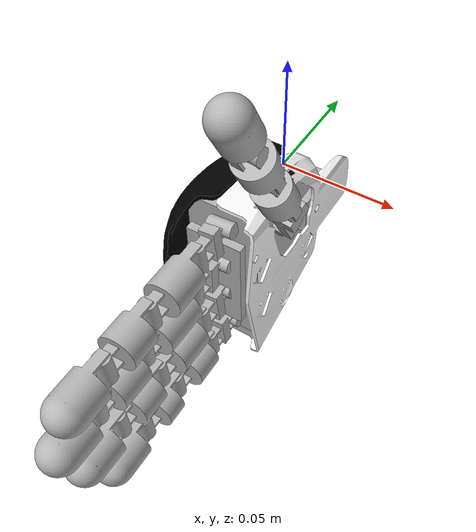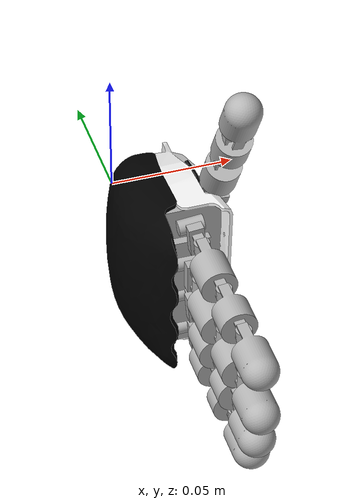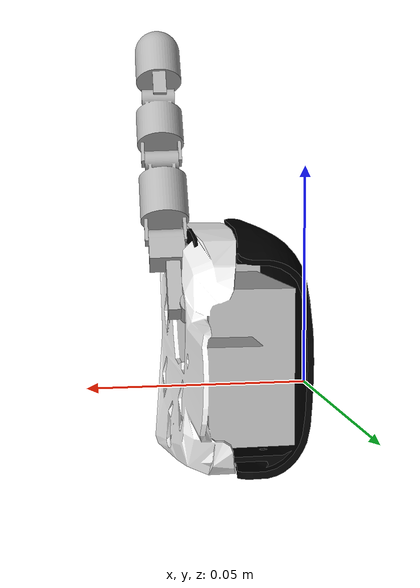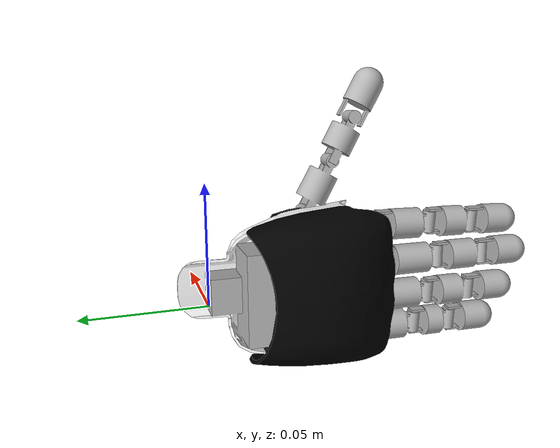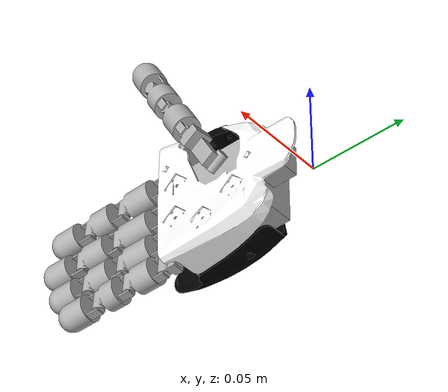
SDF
<sdf version='1.6'>
  <model name='ICub'>
    <link name='base_link'>
      <pose frame=''>0 0 0 0 -0 0</pose>
      <inertial>
        <pose frame=''>0.011682 -0.051682 0.000577 0 -0 0</pose>
        <mass>1.221</mass>
        <inertia>
          <ixx>1.23289</ixx>
          <ixy>0.000161951</ixy>
          <ixz>4.09312e-06</ixz>
          <iyy>1.2322</iyy>
          <iyz>1.57346e-05</iyz>
          <izz>1.23277</izz>
        </inertia>
      </inertial>
      <visual name='base_link_fixed_joint_lump__right_palm_visual'>
        <pose frame=''>0.016 -0.0625 -0 -1.5708 7e-06 -1.57079</pose>
        <geometry>
          <mesh>
            <scale>1 1 1</scale>
            <uri>model://icub_with_hands/meshes/right_palm.dae</uri>
          </mesh>
        </geometry>
      </visual>
      <visual name='base_link_fixed_joint_lump__indexbase_visual_1'>
        <pose frame=''>0.01225 -0.0643 0.027 -1.4749 0.017507 -1.57079</pose>
        <geometry>
          <mesh>
            <scale>1 1 1</scale>
            <uri>model://icub_with_hands/meshes/indexbase.dae</uri>
          </mesh>
        </geometry>
      </visual>
      <visual name='base_link_fixed_joint_lump__il0_visual_2'>
        <pose frame=''>0.01225 -0.079098 0.026741 0.0959 0.017507 -1.57079</pose>
        <geometry>
          <mesh>
            <scale>1 1 1</scale>
            <uri>model://icub_with_hands/meshes/il0.dae</uri>
          </mesh>
        </geometry>
      </visual>
      <visual name='base_link_fixed_joint_lump__littlebase_visual_3'>
        <pose frame=''>0.0135 -0.06225 -0.02475 -1.4835 0.017507 -1.57079</pose>
        <geometry>
          <mesh>
            <scale>1 1 1</scale>
            <uri>model://icub_with_hands/meshes/littlebase.dae</uri>
          </mesh>
        </geometry>
      </visual>
      <visual name='base_link_fixed_joint_lump__lil0_visual_4'>
        <pose frame=''>0.0135 -0.077048 -0.025009 0.0873 0.017507 -1.57079</pose>
        <geometry>
          <mesh>
            <scale>1 1 1</scale>
            <uri>model://icub_with_hands/meshes/lil0.dae</uri>
          </mesh>
        </geometry>
      </visual>
      <visual name='base_link_fixed_joint_lump__middlebase_visual_5'>
        <pose frame=''>0.011 -0.0653 0.01 -1.5708 7e-06 -1.57079</pose>
        <geometry>
          <mesh>
            <scale>1 1 1</scale>
            <uri>model://icub_with_hands/meshes/middlebase.dae</uri>
          </mesh>
        </geometry>
      </visual>
      <visual name='base_link_fixed_joint_lump__ml0_visual_6'>
        <pose frame=''>0.011 -0.0803 0.01 -0 7e-06 -1.57079</pose>
        <geometry>
          <mesh>
            <scale>1 1 1</scale>
            <uri>model://icub_with_hands/meshes/ml0.dae</uri>
          </mesh>
        </geometry>
      </visual>
      <visual name='base_link_fixed_joint_lump__ringbase_visual_7'>
        <pose frame=''>0.01175 -0.06415 -0.0059 -1.4835 0.008707 -1.57079</pose>
        <geometry>
          <mesh>
            <scale>1 1 1</scale>
            <uri>model://icub_with_hands/meshes/ringbase.dae</uri>
          </mesh>
        </geometry>
      </visual>
      <visual name='base_link_fixed_joint_lump__ril0_visual_8'>
        <pose frame=''>0.01175 -0.078949 -0.006029 0.0873 0.008707 -1.57079</pose>
        <geometry>
          <mesh>
            <scale>1 1 1</scale>
            <uri>model://icub_with_hands/meshes/ril0.dae</uri>
          </mesh>
        </geometry>
      </visual>
    </link>
    <link name='il1'>
      <pose frame=''>0.01225 -0.079098 0.026741 0.0959 0.017507 -1.57079</pose>
      <inertial>
        <pose frame=''>0 0 0 0 -0 0</pose>
        <mass>0.111</mass>
        <inertia>
          <ixx>0.112</ixx>
          <ixy>0</ixy>
          <ixz>0</ixz>
          <iyy>0.112</iyy>
          <iyz>0</iyz>
          <izz>0.112</izz>
        </inertia>
      </inertial>
      <visual name='il1_visual'>
        <pose frame=''>0.0259 0 0 0 -0 0</pose>
        <geometry>
          <mesh>
            <scale>1 1 1</scale>
            <uri>model://icub_with_hands/meshes/il1.dae</uri>
          </mesh>
        </geometry>
      </visual>
    </link>
    <joint name='ij3' type='revolute'>
      <child>il1</child>
      <parent>base_link</parent>
      <axis>
        <xyz>-0.095753 -0.017426 0.995253</xyz>
        <limit>
          <lower>0</lower>
          <upper>1.5708</upper>
          <effort>1000</effort>
          <velocity>0.5</velocity>
        </limit>
        <dynamics>
          <spring_reference>0</spring_reference>
          <spring_stiffness>0</spring_stiffness>
        </dynamics>
        <use_parent_model_frame>1</use_parent_model_frame>
      </axis>
    </joint>
    <link name='il2'>
      <pose frame=''>0.012251 -0.104994 0.026287 0.0959 0.017507 -1.57079</pose>
      <inertial>
        <pose frame=''>0 0 0 0 -0 0</pose>
        <mass>0.111</mass>
        <inertia>
          <ixx>0.112</ixx>
          <ixy>0</ixy>
          <ixz>0</ixz>
          <iyy>0.112</iyy>
          <iyz>0</iyz>
          <izz>0.112</izz>
        </inertia>
      </inertial>
      <visual name='il2_visual'>
        <pose frame=''>0.022 0 0 0 -0 0</pose>
        <geometry>
          <mesh>
            <scale>1 1 1</scale>
            <uri>model://icub_with_hands/meshes/il2.dae</uri>
          </mesh>
        </geometry>
      </visual>
    </link>
    <joint name='ij4' type='revolute'>
      <child>il2</child>
      <parent>il1</parent>
      <axis>
        <xyz>-0.095753 -0.017426 0.995253</xyz>
        <limit>
          <lower>0</lower>
          <upper>1.5708</upper>
          <effort>1000</effort>
          <velocity>0.5</velocity>
        </limit>
        <dynamics>
          <spring_reference>0</spring_reference>
          <spring_stiffness>0</spring_stiffness>
        </dynamics>
        <use_parent_model_frame>1</use_parent_model_frame>
      </axis>
    </joint>
    <link name='il3'>
      <pose frame=''>0.012251 -0.126991 0.025902 0.0959 0.017507 -1.57079</pose>
      <inertial>
        <pose frame=''>0 0 0 0 -0 0</pose>
        <mass>0.111</mass>
        <inertia>
          <ixx>0.112</ixx>
          <ixy>0</ixy>
          <ixz>0</ixz>
          <iyy>0.112</iyy>
          <iyz>0</iyz>
          <izz>0.112</izz>
        </inertia>
      </inertial>
      <visual name='il3_visual'>
        <pose frame=''>0.0168 0 0 -1.5708 0 0</pose>
        <geometry>
          <mesh>
            <scale>1 1 1</scale>
            <uri>model://icub_with_hands/meshes/il3.dae</uri>
          </mesh>
        </geometry>
      </visual>
    </link>
    <joint name='ij5' type='revolute'>
      <child>il3</child>
      <parent>il2</parent>
      <axis>
        <xyz>-0.095753 -0.017426 0.995253</xyz>
        <limit>
          <lower>0</lower>
          <upper>1.5708</upper>
          <effort>1000</effort>
          <velocity>0.5</velocity>
        </limit>
        <dynamics>
          <spring_reference>0</spring_reference>
          <spring_stiffness>0</spring_stiffness>
        </dynamics>
        <use_parent_model_frame>1</use_parent_model_frame>
      </axis>
    </joint>
    <link name='lil1'>
      <pose frame=''>0.0135 -0.077048 -0.025009 0.0873 0.017507 -1.57079</pose>
      <inertial>
        <pose frame=''>0 0 0 0 -0 0</pose>
        <mass>0.111</mass>
        <inertia>
          <ixx>0.112</ixx>
          <ixy>0</ixy>
          <ixz>0</ixz>
          <iyy>0.112</iyy>
          <iyz>0</iyz>
          <izz>0.112</izz>
        </inertia>
      </inertial>
      <visual name='lil1_visual'>
        <pose frame=''>0.0218 0 0 0 -0 0</pose>
        <geometry>
          <mesh>
            <scale>1 1 1</scale>
            <uri>model://icub_with_hands/meshes/lil1.dae</uri>
          </mesh>
        </geometry>
      </visual>
    </link>
    <joint name='lij3' type='revolute'>
      <child>lil1</child>
      <parent>base_link</parent>
      <axis>
        <xyz>-0.087189 -0.01744 0.996039</xyz>
        <limit>
          <lower>0</lower>
          <upper>1.5708</upper>
          <effort>1000</effort>
          <velocity>0.5</velocity>
        </limit>
        <dynamics>
          <spring_reference>0</spring_reference>
          <spring_stiffness>0</spring_stiffness>
        </dynamics>
        <use_parent_model_frame>1</use_parent_model_frame>
      </axis>
    </joint>
    <link name='lil2'>
      <pose frame=''>0.0135 -0.098844 -0.025391 0.0873 0.017507 -1.57079</pose>
      <inertial>
        <pose frame=''>0 0 0 0 -0 0</pose>
        <mass>0.111</mass>
        <inertia>
          <ixx>0.112</ixx>
          <ixy>0</ixy>
          <ixz>0</ixz>
          <iyy>0.112</iyy>
          <iyz>0</iyz>
          <izz>0.112</izz>
        </inertia>
      </inertial>
      <visual name='lil2_visual'>
        <pose frame=''>0.019 0 0 0 -0 0</pose>
        <geometry>
          <mesh>
            <scale>1 1 1</scale>
            <uri>model://icub_with_hands/meshes/lil2.dae</uri>
          </mesh>
        </geometry>
      </visual>
    </link>
    <joint name='lij4' type='revolute'>
      <child>lil2</child>
      <parent>lil1</parent>
      <axis>
        <xyz>-0.087189 -0.01744 0.996039</xyz>
        <limit>
          <lower>0</lower>
          <upper>1.5708</upper>
          <effort>1000</effort>
          <velocity>0.5</velocity>
        </limit>
        <dynamics>
          <spring_reference>0</spring_reference>
          <spring_stiffness>0</spring_stiffness>
        </dynamics>
        <use_parent_model_frame>1</use_parent_model_frame>
      </axis>
    </joint>
    <link name='lil3'>
      <pose frame=''>0.0135 -0.117841 -0.025723 0.0873 0.017507 -1.57079</pose>
      <inertial>
        <pose frame=''>0 0 0 0 -0 0</pose>
        <mass>0.111</mass>
        <inertia>
          <ixx>0.112</ixx>
          <ixy>0</ixy>
          <ixz>0</ixz>
          <iyy>0.112</iyy>
          <iyz>0</iyz>
          <izz>0.112</izz>
        </inertia>
      </inertial>
      <visual name='lil3_visual'>
        <pose frame=''>0.0168 0 0 -1.5708 0 0</pose>
        <geometry>
          <mesh>
            <scale>1 1 1</scale>
            <uri>model://icub_with_hands/meshes/lil3.dae</uri>
          </mesh>
        </geometry>
      </visual>
    </link>
    <joint name='lij5' type='revolute'>
      <child>lil3</child>
      <parent>lil2</parent>
      <axis>
        <xyz>-0.087189 -0.01744 0.996039</xyz>
        <limit>
          <lower>0</lower>
          <upper>1.5708</upper>
          <effort>1000</effort>
          <velocity>0.5</velocity>
        </limit>
        <dynamics>
          <spring_reference>0</spring_reference>
          <spring_stiffness>0</spring_stiffness>
        </dynamics>
        <use_parent_model_frame>1</use_parent_model_frame>
      </axis>
    </joint>
    <link name='ml1'>
      <pose frame=''>0.011 -0.0803 0.01 -0 7e-06 -1.57079</pose>
      <inertial>
        <pose frame=''>0 0 0 0 -0 0</pose>
        <mass>0.111</mass>
        <inertia>
          <ixx>0.112</ixx>
          <ixy>0</ixy>
          <ixz>0</ixz>
          <iyy>0.112</iyy>
          <iyz>0</iyz>
          <izz>0.112</izz>
        </inertia>
      </inertial>
      <visual name='ml1_visual'>
        <pose frame=''>0.0285 0 0 0 -0 0</pose>
        <geometry>
          <mesh>
            <scale>1 1 1</scale>
            <uri>model://icub_with_hands/meshes/ml1.dae</uri>
          </mesh>
        </geometry>
      </visual>
    </link>
    <joint name='mj3' type='revolute'>
      <child>ml1</child>
      <parent>base_link</parent>
      <axis>
        <xyz>0 -7e-06 1</xyz>
        <limit>
          <lower>0</lower>
          <upper>1.5708</upper>
          <effort>1000</effort>
          <velocity>0.5</velocity>
        </limit>
        <dynamics>
          <spring_reference>0</spring_reference>
          <spring_stiffness>0</spring_stiffness>
        </dynamics>
        <use_parent_model_frame>1</use_parent_model_frame>
      </axis>
    </joint>
    <link name='ml2'>
      <pose frame=''>0.011 -0.1088 0.01 -0 7e-06 -1.57079</pose>
      <inertial>
        <pose frame=''>0 0 0 0 -0 0</pose>
        <mass>0.111</mass>
        <inertia>
          <ixx>0.112</ixx>
          <ixy>0</ixy>
          <ixz>0</ixz>
          <iyy>0.112</iyy>
          <iyz>0</iyz>
          <izz>0.112</izz>
        </inertia>
      </inertial>
      <visual name='ml2_visual'>
        <pose frame=''>0.024 0 0 0 -0 0</pose>
        <geometry>
          <mesh>
            <scale>1 1 1</scale>
            <uri>model://icub_with_hands/meshes/ml2.dae</uri>
          </mesh>
        </geometry>
      </visual>
    </link>
    <joint name='mj4' type='revolute'>
      <child>ml2</child>
      <parent>ml1</parent>
      <axis>
        <xyz>0 -7e-06 1</xyz>
        <limit>
          <lower>0</lower>
          <upper>1.5708</upper>
          <effort>1000</effort>
          <velocity>0.5</velocity>
        </limit>
        <dynamics>
          <spring_reference>0</spring_reference>
          <spring_stiffness>0</spring_stiffness>
        </dynamics>
        <use_parent_model_frame>1</use_parent_model_frame>
      </axis>
    </joint>
    <link name='ml3'>
      <pose frame=''>0.011001 -0.1328 0.009999 -0 7e-06 -1.57079</pose>
      <inertial>
        <pose frame=''>0 0 0 0 -0 0</pose>
        <mass>0.111</mass>
        <inertia>
          <ixx>0.112</ixx>
          <ixy>0</ixy>
          <ixz>0</ixz>
          <iyy>0.112</iyy>
          <iyz>0</iyz>
          <izz>0.112</izz>
        </inertia>
      </inertial>
      <visual name='ml3_visual'>
        <pose frame=''>0.0168 0 0 -1.5708 0 0</pose>
        <geometry>
          <mesh>
            <scale>1 1 1</scale>
            <uri>model://icub_with_hands/meshes/ml3.dae</uri>
          </mesh>
        </geometry>
      </visual>
    </link>
    <joint name='mj5' type='revolute'>
      <child>ml3</child>
      <parent>ml2</parent>
      <axis>
        <xyz>0 -7e-06 1</xyz>
        <limit>
          <lower>0</lower>
          <upper>1.5708</upper>
          <effort>1000</effort>
          <velocity>0.5</velocity>
        </limit>
        <dynamics>
          <spring_reference>0</spring_reference>
          <spring_stiffness>0</spring_stiffness>
        </dynamics>
        <use_parent_model_frame>1</use_parent_model_frame>
      </axis>
    </joint>
    <link name='ril1'>
      <pose frame=''>0.01175 -0.078949 -0.006029 0.0873 0.008707 -1.57079</pose>
      <inertial>
        <pose frame=''>0 0 0 0 -0 0</pose>
        <mass>0.111</mass>
        <inertia>
          <ixx>0.112</ixx>
          <ixy>0</ixy>
          <ixz>0</ixz>
          <iyy>0.112</iyy>
          <iyz>0</iyz>
          <izz>0.112</izz>
        </inertia>
      </inertial>
      <visual name='ril1_visual'>
        <pose frame=''>0.0259 0 0 0 -0 0</pose>
        <geometry>
          <mesh>
            <scale>1 1 1</scale>
            <uri>model://icub_with_hands/meshes/ril1.dae</uri>
          </mesh>
        </geometry>
      </visual>
    </link>
    <joint name='rij3' type='revolute'>
      <child>ril1</child>
      <parent>base_link</parent>
      <axis>
        <xyz>-0.087189 -0.008674 0.996154</xyz>
        <limit>
          <lower>0</lower>
          <upper>1.5708</upper>
          <effort>1000</effort>
          <velocity>0.5</velocity>
        </limit>
        <dynamics>
          <spring_reference>0</spring_reference>
          <spring_stiffness>0</spring_stiffness>
        </dynamics>
        <use_parent_model_frame>1</use_parent_model_frame>
      </axis>
    </joint>
    <link name='ril2'>
      <pose frame=''>0.01175 -0.104848 -0.006254 0.0873 0.008707 -1.57079</pose>
      <inertial>
        <pose frame=''>0 0 0 0 -0 0</pose>
        <mass>0.111</mass>
        <inertia>
          <ixx>0.112</ixx>
          <ixy>0</ixy>
          <ixz>0</ixz>
          <iyy>0.112</iyy>
          <iyz>0</iyz>
          <izz>0.112</izz>
        </inertia>
      </inertial>
      <visual name='ril2_visual'>
        <pose frame=''>0.022 0 0 0 -0 0</pose>
        <geometry>
          <mesh>
            <scale>1 1 1</scale>
            <uri>model://icub_with_hands/meshes/ril2.dae</uri>
          </mesh>
        </geometry>
      </visual>
    </link>
    <joint name='rij4' type='revolute'>
      <child>ril2</child>
      <parent>ril1</parent>
      <axis>
        <xyz>-0.087189 -0.008674 0.996154</xyz>
        <limit>
          <lower>0</lower>
          <upper>1.5708</upper>
          <effort>1000</effort>
          <velocity>0.5</velocity>
        </limit>
        <dynamics>
          <spring_reference>0</spring_reference>
          <spring_stiffness>0</spring_stiffness>
        </dynamics>
        <use_parent_model_frame>1</use_parent_model_frame>
      </axis>
    </joint>
    <link name='ril3'>
      <pose frame=''>0.01175 -0.126848 -0.006446 0.0873 0.008707 -1.57079</pose>
      <inertial>
        <pose frame=''>0 0 0 0 -0 0</pose>
        <mass>0.111</mass>
        <inertia>
          <ixx>0.112</ixx>
          <ixy>0</ixy>
          <ixz>0</ixz>
          <iyy>0.112</iyy>
          <iyz>0</iyz>
          <izz>0.112</izz>
        </inertia>
      </inertial>
      <visual name='ril3_visual'>
        <pose frame=''>0.0168 0 0 -1.5708 0 0</pose>
        <geometry>
          <mesh>
            <scale>1 1 1</scale>
            <uri>model://icub_with_hands/meshes/ril3.dae</uri>
          </mesh>
        </geometry>
      </visual>
    </link>
    <joint name='rij5' type='revolute'>
      <child>ril3</child>
      <parent>ril2</parent>
      <axis>
        <xyz>-0.087189 -0.008674 0.996154</xyz>
        <limit>
          <lower>0</lower>
          <upper>1.5708</upper>
          <effort>1000</effort>
          <velocity>0.5</velocity>
        </limit>
        <dynamics>
          <spring_reference>0</spring_reference>
          <spring_stiffness>0</spring_stiffness>
        </dynamics>
        <use_parent_model_frame>1</use_parent_model_frame>
      </axis>
    </joint>
    <link name='tl0'>
      <pose frame=''>0.021 -0.0386 0.01235 -0.078604 -1.07329 -1.57079</pose>
      <inertial>
        <pose frame=''>0 0 0 0 -0 0</pose>
        <mass>0.222</mass>
        <inertia>
          <ixx>0.224</ixx>
          <ixy>0</ixy>
          <ixz>0</ixz>
          <iyy>0.224</iyy>
          <iyz>5.29396e-23</iyz>
          <izz>0.224</izz>
        </inertia>
      </inertial>
      <visual name='tl0_visual'>
        <pose frame=''>0 0 0 -1.5708 0 0</pose>
        <geometry>
          <mesh>
            <scale>1 1 1</scale>
            <uri>model://icub_with_hands/meshes/tl0.dae</uri>
          </mesh>
        </geometry>
      </visual>
      <visual name='tl0_fixed_joint_lump__tl1_visual_1'>
        <pose frame=''>0.021 0.0056 -0 -1.5708 0 0</pose>
        <geometry>
          <mesh>
            <scale>1 1 1</scale>
            <uri>model://icub_with_hands/meshes/tl1.dae</uri>
          </mesh>
        </geometry>
      </visual>
    </link>
    <joint name='tj2' type='revolute'>
      <child>tl0</child>
      <parent>base_link</parent>
      <axis>
        <xyz>0.078514 0.876064 0.47576</xyz>
        <limit>
          <lower>0</lower>
          <upper>1.5708</upper>
          <effort>1000</effort>
          <velocity>0.5</velocity>
        </limit>
        <dynamics>
          <spring_reference>0</spring_reference>
          <spring_stiffness>0</spring_stiffness>
        </dynamics>
        <use_parent_model_frame>1</use_parent_model_frame>
      </axis>
    </joint>
    <link name='tl2'>
      <pose frame=''>0.026583 -0.049008 0.030595 -1.6494 -1.07329 -1.57079</pose>
      <inertial>
        <pose frame=''>0 0 0 0 -0 0</pose>
        <mass>0.111</mass>
        <inertia>
          <ixx>0.112</ixx>
          <ixy>0</ixy>
          <ixz>0</ixz>
          <iyy>0.112</iyy>
          <iyz>0</iyz>
          <izz>0.112</izz>
        </inertia>
      </inertial>
      <visual name='tl2_visual'>
        <pose frame=''>0.026 0 0 0 -0 0</pose>
        <geometry>
          <mesh>
            <scale>1 1 1</scale>
            <uri>model://icub_with_hands/meshes/tl2.dae</uri>
          </mesh>
        </geometry>
      </visual>
    </link>
    <joint name='tj4' type='revolute'>
      <child>tl2</child>
      <parent>tl0</parent>
      <axis>
        <xyz>0.996913 -0.068997 -0.037476</xyz>
        <limit>
          <lower>0</lower>
          <upper>1.5708</upper>
          <effort>1000</effort>
          <velocity>0.5</velocity>
        </limit>
        <dynamics>
          <spring_reference>0</spring_reference>
          <spring_stiffness>0</spring_stiffness>
        </dynamics>
        <use_parent_model_frame>1</use_parent_model_frame>
      </axis>
    </joint>
    <link name='tl3'>
      <pose frame=''>0.026583 -0.061416 0.053443 -1.6494 -1.07329 -1.57079</pose>
      <inertial>
        <pose frame=''>0 0 0 0 -0 0</pose>
        <mass>0.111</mass>
        <inertia>
          <ixx>0.112</ixx>
          <ixy>0</ixy>
          <ixz>0</ixz>
          <iyy>0.112</iyy>
          <iyz>0</iyz>
          <izz>0.112</izz>
        </inertia>
      </inertial>
      <visual name='tl3_visual'>
        <pose frame=''>0.022 0 0 0 -0 0</pose>
        <geometry>
          <mesh>
            <scale>1 1 1</scale>
            <uri>model://icub_with_hands/meshes/tl3.dae</uri>
          </mesh>
        </geometry>
      </visual>
    </link>
    <joint name='tj5' type='revolute'>
      <child>tl3</child>
      <parent>tl2</parent>
      <axis>
        <xyz>0.996913 -0.068997 -0.037476</xyz>
        <limit>
          <lower>0</lower>
          <upper>1.5708</upper>
          <effort>1000</effort>
          <velocity>0.5</velocity>
        </limit>
        <dynamics>
          <spring_reference>0</spring_reference>
          <spring_stiffness>0</spring_stiffness>
        </dynamics>
        <use_parent_model_frame>1</use_parent_model_frame>
      </axis>
    </joint>
    <link name='tl4'>
      <pose frame=''>0.026583 -0.071916 0.072776 -1.6494 -1.07329 -1.57079</pose>
      <inertial>
        <pose frame=''>0 0 0 0 -0 0</pose>
        <mass>0.111</mass>
        <inertia>
          <ixx>0.112</ixx>
          <ixy>0</ixy>
          <ixz>0</ixz>
          <iyy>0.112</iyy>
          <iyz>0</iyz>
          <izz>0.112</izz>
        </inertia>
      </inertial>
      <visual name='tl4_visual'>
        <pose frame=''>0.0168 0 0 0 -0 0</pose>
        <geometry>
          <mesh>
            <scale>1 1 1</scale>
            <uri>model://icub_with_hands/meshes/tl4.dae</uri>
          </mesh>
        </geometry>
      </visual>
    </link>
    <joint name='tj6' type='revolute'>
      <child>tl4</child>
      <parent>tl3</parent>
      <axis>
        <xyz>0.996913 -0.068997 -0.037476</xyz>
        <limit>
          <lower>0</lower>
          <upper>1.5708</upper>
          <effort>1000</effort>
          <velocity>0.5</velocity>
        </limit>
        <dynamics>
          <spring_reference>0</spring_reference>
          <spring_stiffness>0</spring_stiffness>
        </dynamics>
        <use_parent_model_frame>1</use_parent_model_frame>
      </axis>
    </joint>
  </model>
</sdf>
